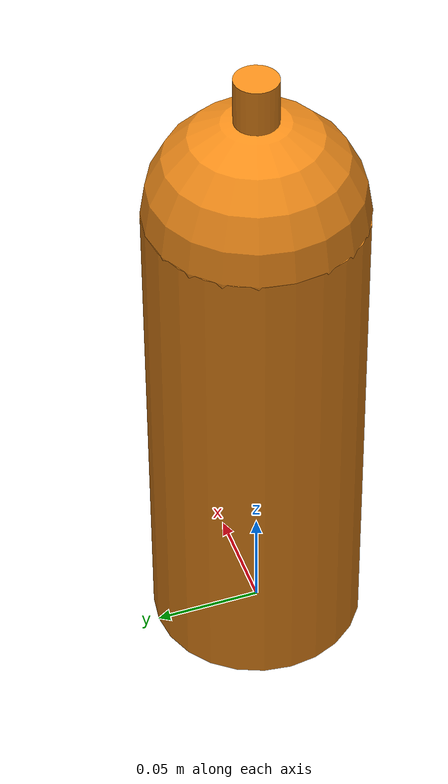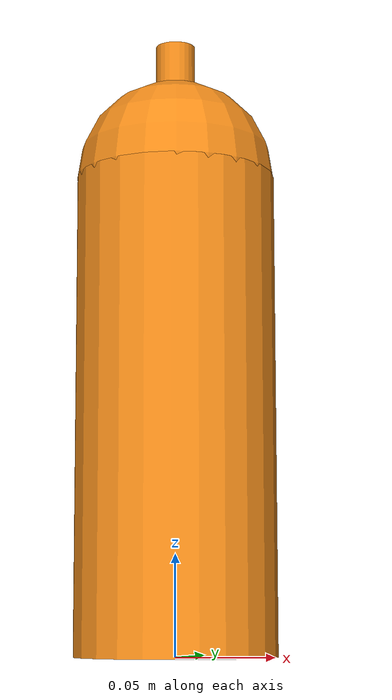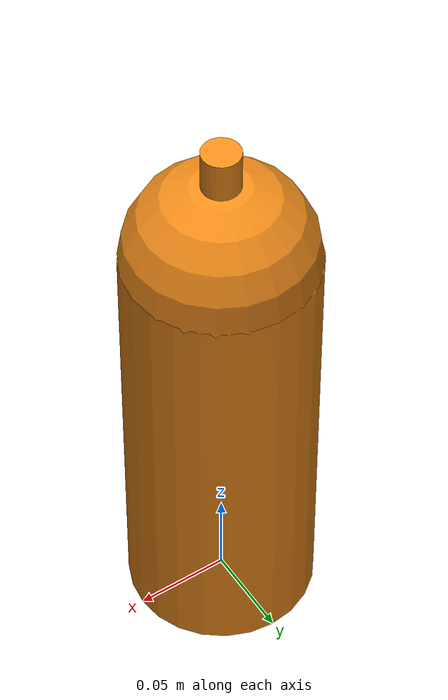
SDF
<?xml version="1.0" encoding="utf-8"?>
<sdf version="1.4">
<model name="Nuka-Cola2">
    <static>0</static>
    <link name="link">
        <inertial>]
            <pose>0 0 1 0 0 0</pose>
            <mass>0.390</mass>
            <inertia>
            <ixx>0.00055575</ixx>
            <ixy>0</ixy>
            <ixz>0</ixz>
            <iyy>0.00055575</iyy>
            <iyz>0</iyz>
            <izz>0.0001755</izz>
            </inertia>
        </inertial>]
        <collision name="collision">
            <pose>0 0 0.15 0 0 0.8</pose>
            <geometry>
                <cylinder>
                    <radius>0.055</radius>
                    <length>0.30</length>
                </cylinder>
            </geometry>
        </collision>
        <visual name="body">
            <pose>0 0 0.12 0 0 0</pose>
            <geometry>
                <cylinder>
                    <radius>0.05</radius>
                    <length>0.24</length>
                </cylinder>
            </geometry>
            <material>
                <script>
                    <uri>file://media/materials/scripts/gazebo.material</uri>
                    <name>Gazebo/Orange</name>
                </script>
            </material>
        </visual>
        <visual name="head">
            <pose>0 0 0.24 0 0 0</pose>
            <geometry>
                <sphere>
                    <radius>0.05</radius>
                </sphere>
            </geometry>
            <material>
                <script>
                    <uri>file://media/materials/scripts/gazebo.material</uri>
                    <name>Gazebo/Orange</name>
            </script>
        </material>
        </visual>
        <visual name="top">
            <pose>0 0 0.29 0 0 0</pose>
            <geometry>
                <cylinder>
                    <radius>0.01</radius>
                    <length>0.04</length>
                </cylinder>
            </geometry>
            <material>
                <script>
                    <uri>file://media/materials/scripts/gazebo.material</uri>
                    <name>Gazebo/Orange</name>
            </script>
        </material>
        </visual>
    </link>
  </model>
</sdf>
